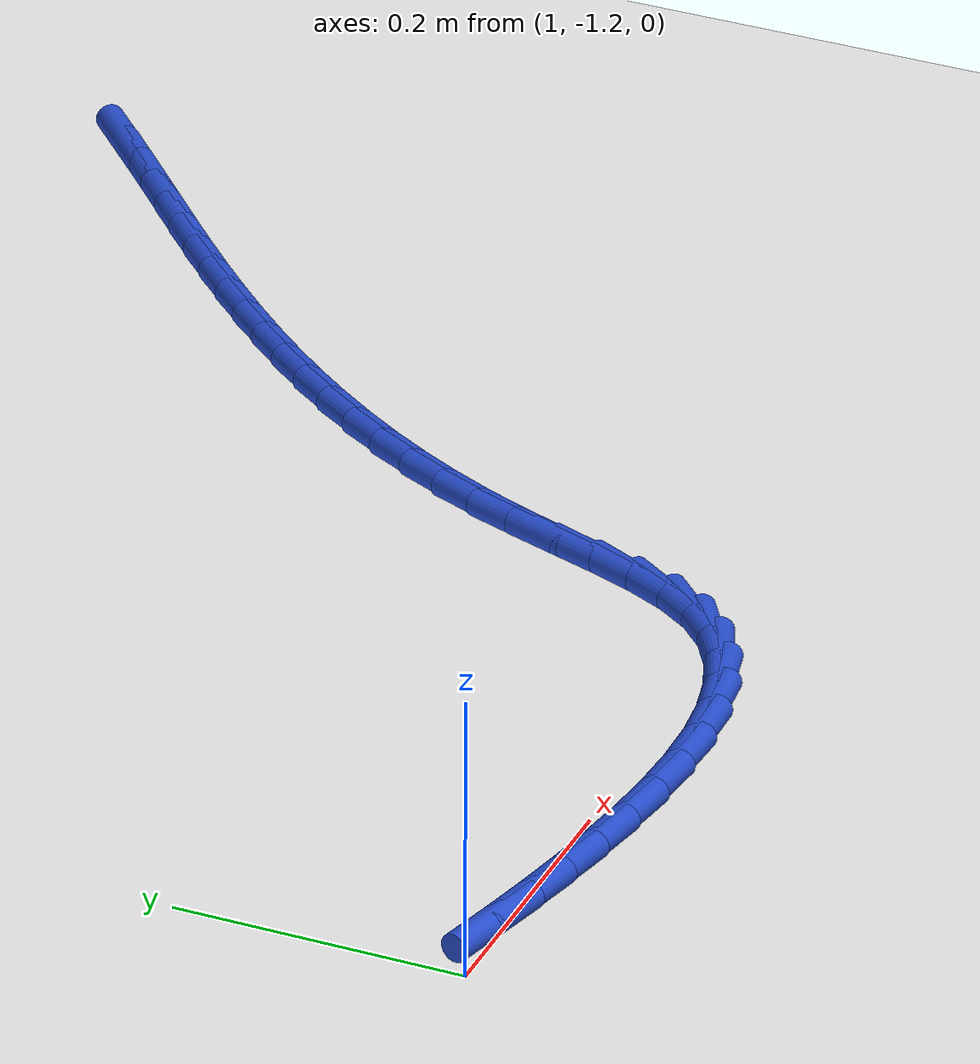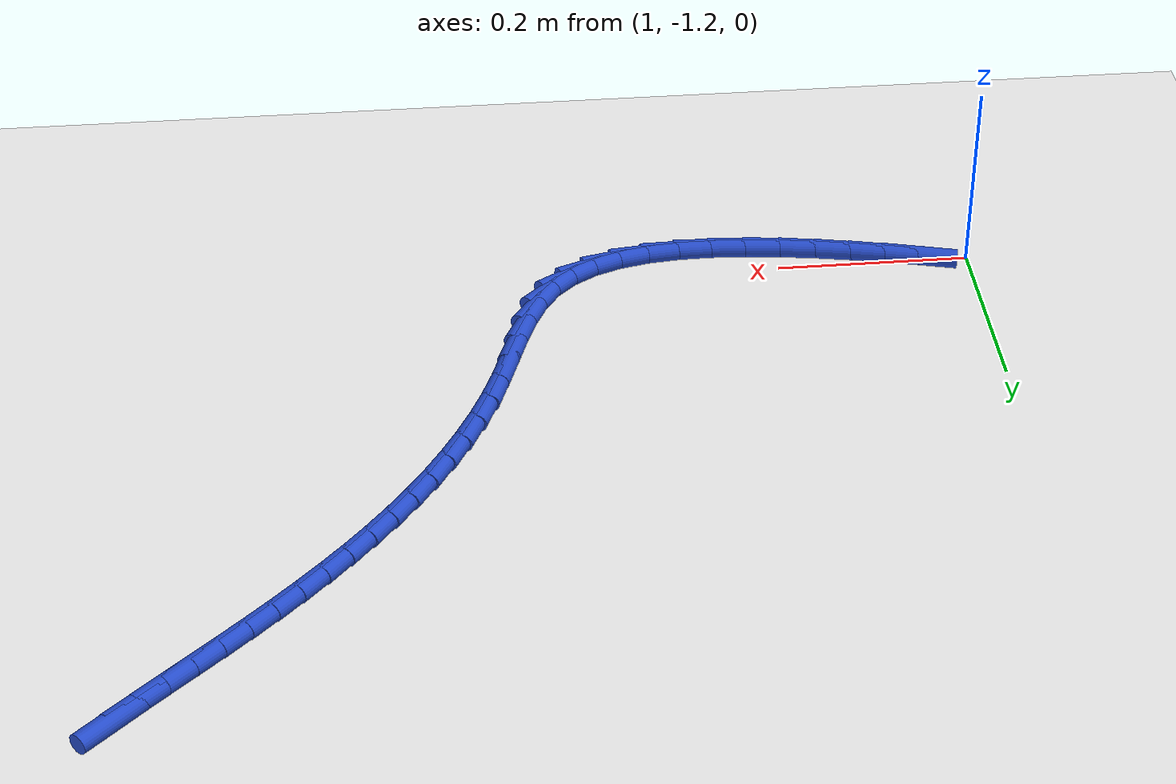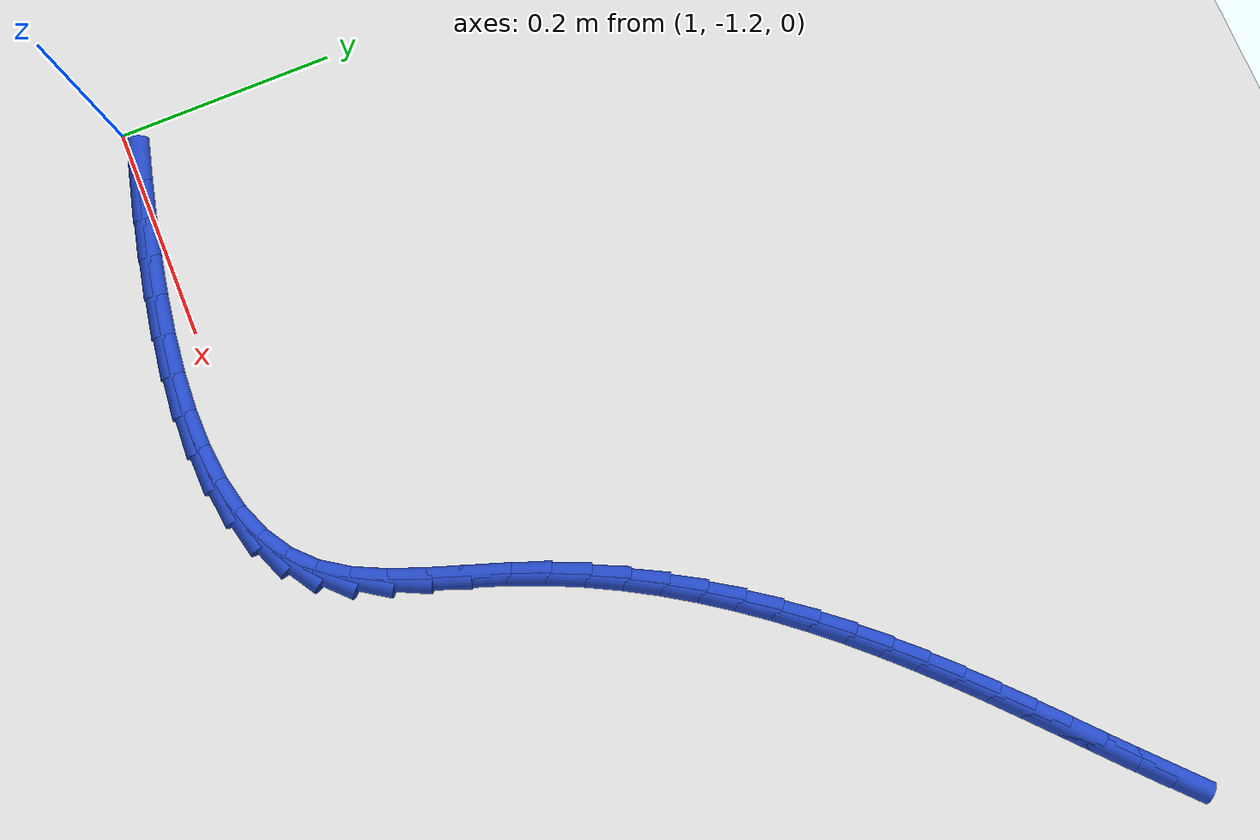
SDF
<sdf version="1.6">
 <world name="default">
  <model name="ground_plane">
   <static>1</static>
   <link name="link">
    <collision name="collision">
     <geometry><plane><normal>0 0 1</normal><size>100 100</size></plane></geometry>
     <surface><friction><ode><mu>100</mu><mu2>50</mu2></ode></friction></surface>
    </collision>
    <visual name="visual">
     <cast_shadows>0</cast_shadows>
     <geometry><plane><normal>0 0 1</normal><size>100 100</size></plane></geometry>
     <material>
      <script><uri>file://media/materials/scripts/gazebo.material</uri><name>Gazebo/WhiteGlow</name></script>
     </material>
    </visual>
   </link>
  </model>
  <model name="line">
   <link name="link_122">
    <pose>1.874182190727588 -0.5668074917249718 0.01 0 1.57 0.7535798640438116</pose>
    <collision name="collision">
     <geometry><cylinder><radius>0.01</radius><length>0.08</length></cylinder></geometry>
    </collision>
    <visual name="visual">
     <material>
      <script><name>Gazebo/Blue</name><uri>file://media/materials/scripts/gazebo.material</uri></script>
     </material>
     <geometry><cylinder><radius>0.01</radius><length>0.08</length></cylinder></geometry>
    </visual>
   </link>
   <link name="link_123">
    <pose>1.8502339488571236 -0.5892782609705726 0.01 0 1.57 0.7433039889756581</pose>
    <collision name="collision">
     <geometry><cylinder><radius>0.01</radius><length>0.08</length></cylinder></geometry>
    </collision>
    <visual name="visual">
     <material>
      <script><name>Gazebo/Blue</name><uri>file://media/materials/scripts/gazebo.material</uri></script>
     </material>
     <geometry><cylinder><radius>0.01</radius><length>0.08</length></cylinder></geometry>
    </visual>
   </link>
   <link name="link_124">
    <pose>1.8262081559147005 -0.6113619654746523 0.01 0 1.57 0.7390709265380411</pose>
    <collision name="collision">
     <geometry><cylinder><radius>0.01</radius><length>0.08</length></cylinder></geometry>
    </collision>
    <visual name="visual">
     <material>
      <script><name>Gazebo/Blue</name><uri>file://media/materials/scripts/gazebo.material</uri></script>
     </material>
     <geometry><cylinder><radius>0.01</radius><length>0.08</length></cylinder></geometry>
    </visual>
   </link>
   <link name="link_125">
    <pose>1.8022010480003792 -0.6332417388487268 0.01 0 1.57 0.7409867454874596</pose>
    <collision name="collision">
     <geometry><cylinder><radius>0.01</radius><length>0.08</length></cylinder></geometry>
    </collision>
    <visual name="visual">
     <material>
      <script><name>Gazebo/Blue</name><uri>file://media/materials/scripts/gazebo.material</uri></script>
     </material>
     <geometry><cylinder><radius>0.01</radius><length>0.08</length></cylinder></geometry>
    </visual>
   </link>
   <link name="link_126">
    <pose>1.7783088612142213 -0.6551007147043103 0.01 0 1.57 0.7490983043860503</pose>
    <collision name="collision">
     <geometry><cylinder><radius>0.01</radius><length>0.08</length></cylinder></geometry>
    </collision>
    <visual name="visual">
     <material>
      <script><name>Gazebo/Blue</name><uri>file://media/materials/scripts/gazebo.material</uri></script>
     </material>
     <geometry><cylinder><radius>0.01</radius><length>0.08</length></cylinder></geometry>
    </visual>
   </link>
   <link name="link_127">
    <pose>1.7546278316562858 -0.6771220266529182 0.01 0 1.57 0.7633588235683971</pose>
    <collision name="collision">
     <geometry><cylinder><radius>0.01</radius><length>0.08</length></cylinder></geometry>
    </collision>
    <visual name="visual">
     <material>
      <script><name>Gazebo/Blue</name><uri>file://media/materials/scripts/gazebo.material</uri></script>
     </material>
     <geometry><cylinder><radius>0.01</radius><length>0.08</length></cylinder></geometry>
    </visual>
   </link>
   <link name="link_128">
    <pose>1.7312541097155654 -0.6994875231666992 0.01 0 1.57 0.7824559437452026</pose>
    <collision name="collision">
     <geometry><cylinder><radius>0.01</radius><length>0.08</length></cylinder></geometry>
    </collision>
    <visual name="visual">
     <material>
      <script><name>Gazebo/Blue</name><uri>file://media/materials/scripts/gazebo.material</uri></script>
     </material>
     <geometry><cylinder><radius>0.01</radius><length>0.08</length></cylinder></geometry>
    </visual>
   </link>
   <link name="link_129">
    <pose>1.7082803408620766 -0.7223265004691762 0.01 0 1.57 0.8047190325034674</pose>
    <collision name="collision">
     <geometry><cylinder><radius>0.01</radius><length>0.08</length></cylinder></geometry>
    </collision>
    <visual name="visual">
     <material>
      <script><name>Gazebo/Blue</name><uri>file://media/materials/scripts/gazebo.material</uri></script>
     </material>
     <geometry><cylinder><radius>0.01</radius><length>0.08</length></cylinder></geometry>
    </visual>
   </link>
   <link name="link_130">
    <pose>1.685794514921609 -0.7456984487271364 0.01 0 1.57 0.8300464755602897</pose>
    <collision name="collision">
     <geometry><cylinder><radius>0.01</radius><length>0.08</length></cylinder></geometry>
    </collision>
    <visual name="visual">
     <material>
      <script><name>Gazebo/Blue</name><uri>file://media/materials/scripts/gazebo.material</uri></script>
     </material>
     <geometry><cylinder><radius>0.01</radius><length>0.08</length></cylinder></geometry>
    </visual>
   </link>
   <link name="link_131">
    <pose>1.6638843000327512 -0.7696580347759787 0.01 0 1.57 0.8584422606500031</pose>
    <collision name="collision">
     <geometry><cylinder><radius>0.01</radius><length>0.08</length></cylinder></geometry>
    </collision>
    <visual name="visual">
     <material>
      <script><name>Gazebo/Blue</name><uri>file://media/materials/scripts/gazebo.material</uri></script>
     </material>
     <geometry><cylinder><radius>0.01</radius><length>0.08</length></cylinder></geometry>
    </visual>
   </link>
   <link name="link_132">
    <pose>1.6426373643340937 -0.7942599254511029 0.01 0 1.57 0.8898941808894133</pose>
    <collision name="collision">
     <geometry><cylinder><radius>0.01</radius><length>0.08</length></cylinder></geometry>
    </collision>
    <visual name="visual">
     <material>
      <script><name>Gazebo/Blue</name><uri>file://media/materials/scripts/gazebo.material</uri></script>
     </material>
     <geometry><cylinder><radius>0.01</radius><length>0.08</length></cylinder></geometry>
    </visual>
   </link>
   <link name="link_133">
    <pose>1.6221413759642271 -0.8195587875879076 0.01 0 1.57 0.9243658996771016</pose>
    <collision name="collision">
     <geometry><cylinder><radius>0.01</radius><length>0.08</length></cylinder></geometry>
    </collision>
    <visual name="visual">
     <material>
      <script><name>Gazebo/Blue</name><uri>file://media/materials/scripts/gazebo.material</uri></script>
     </material>
     <geometry><cylinder><radius>0.01</radius><length>0.08</length></cylinder></geometry>
    </visual>
   </link>
   <link name="link_134">
    <pose>1.6024840030617395 -0.845609288021792 0.01 0 1.57 0.9617885758835427</pose>
    <collision name="collision">
     <geometry><cylinder><radius>0.01</radius><length>0.08</length></cylinder></geometry>
    </collision>
    <visual name="visual">
     <material>
      <script><name>Gazebo/Blue</name><uri>file://media/materials/scripts/gazebo.material</uri></script>
     </material>
     <geometry><cylinder><radius>0.01</radius><length>0.08</length></cylinder></geometry>
    </visual>
   </link>
   <link name="link_135">
    <pose>1.5837529137652218 -0.8724660935881559 0.01 0 1.57 1.0020525653082217</pose>
    <collision name="collision">
     <geometry><cylinder><radius>0.01</radius><length>0.08</length></cylinder></geometry>
    </collision>
    <visual name="visual">
     <material>
      <script><name>Gazebo/Blue</name><uri>file://media/materials/scripts/gazebo.material</uri></script>
     </material>
     <geometry><cylinder><radius>0.01</radius><length>0.08</length></cylinder></geometry>
    </visual>
   </link>
   <link name="link_136">
    <pose>1.5660357762132626 -0.9001838711223981 0.01 0 1.57 1.0449999357946032</pose>
    <collision name="collision">
     <geometry><cylinder><radius>0.01</radius><length>0.08</length></cylinder></geometry>
    </collision>
    <visual name="visual">
     <material>
      <script><name>Gazebo/Blue</name><uri>file://media/materials/scripts/gazebo.material</uri></script>
     </material>
     <geometry><cylinder><radius>0.01</radius><length>0.08</length></cylinder></geometry>
    </visual>
   </link>
   <link name="link_137">
    <pose>1.5494202585444523 -0.9288172874599181 0.01 0 1.57 1.090418725132333</pose>
    <collision name="collision">
     <geometry><cylinder><radius>0.01</radius><length>0.08</length></cylinder></geometry>
    </collision>
    <visual name="visual">
     <material>
      <script><name>Gazebo/Blue</name><uri>file://media/materials/scripts/gazebo.material</uri></script>
     </material>
     <geometry><cylinder><radius>0.01</radius><length>0.08</length></cylinder></geometry>
    </visual>
   </link>
   <link name="link_138">
    <pose>1.53399402889738 -0.9584210094361156 0.01 0 1.57 1.1380399701010162</pose>
    <collision name="collision">
     <geometry><cylinder><radius>0.01</radius><length>0.08</length></cylinder></geometry>
    </collision>
    <visual name="visual">
     <material>
      <script><name>Gazebo/Blue</name><uri>file://media/materials/scripts/gazebo.material</uri></script>
     </material>
     <geometry><cylinder><radius>0.01</radius><length>0.08</length></cylinder></geometry>
    </visual>
   </link>
   <link name="link_139">
    <pose>1.5198447554106358 -0.989049703886389 0.01 0 1.57 1.187538472412946</pose>
    <collision name="collision">
     <geometry><cylinder><radius>0.01</radius><length>0.08</length></cylinder></geometry>
    </collision>
    <visual name="visual">
     <material>
      <script><name>Gazebo/Blue</name><uri>file://media/materials/scripts/gazebo.material</uri></script>
     </material>
     <geometry><cylinder><radius>0.01</radius><length>0.08</length></cylinder></geometry>
    </visual>
   </link>
   <link name="link_140">
    <pose>1.5070601062228093 -1.020758037646138 0.01 0 1.57 1.2316523930967722</pose>
    <collision name="collision">
     <geometry><cylinder><radius>0.01</radius><length>0.08</length></cylinder></geometry>
    </collision>
    <visual name="visual">
     <material>
      <script><name>Gazebo/Blue</name><uri>file://media/materials/scripts/gazebo.material</uri></script>
     </material>
     <geometry><cylinder><radius>0.01</radius><length>0.08</length></cylinder></geometry>
    </visual>
   </link>
   <link name="link_141">
    <pose>1.4955426695643015 -1.0534062407184974 0.01 0 1.57 1.2410888413136951</pose>
    <collision name="collision">
     <geometry><cylinder><radius>0.01</radius><length>0.08</length></cylinder></geometry>
    </collision>
    <visual name="visual">
     <material>
      <script><name>Gazebo/Blue</name><uri>file://media/materials/scripts/gazebo.material</uri></script>
     </material>
     <geometry><cylinder><radius>0.01</radius><length>0.08</length></cylinder></geometry>
    </visual>
   </link>
   <link name="link_142">
    <pose>1.4843871558325057 -1.0860058220960729 0.01 0 1.57 1.207273141518912</pose>
    <collision name="collision">
     <geometry><cylinder><radius>0.01</radius><length>0.08</length></cylinder></geometry>
    </collision>
    <visual name="visual">
     <material>
      <script><name>Gazebo/Blue</name><uri>file://media/materials/scripts/gazebo.material</uri></script>
     </material>
     <geometry><cylinder><radius>0.01</radius><length>0.08</length></cylinder></geometry>
    </visual>
   </link>
   <link name="link_143">
    <pose>1.4724679031105035 -1.1173367772855762 0.01 0 1.57 1.1242815434180873</pose>
    <collision name="collision">
     <geometry><cylinder><radius>0.01</radius><length>0.08</length></cylinder></geometry>
    </collision>
    <visual name="visual">
     <material>
      <script><name>Gazebo/Blue</name><uri>file://media/materials/scripts/gazebo.material</uri></script>
     </material>
     <geometry><cylinder><radius>0.01</radius><length>0.08</length></cylinder></geometry>
    </visual>
   </link>
   <link name="link_144">
    <pose>1.45865924450058 -1.1461790965611138 0.01 0 1.57 0.9809244017219313</pose>
    <collision name="collision">
     <geometry><cylinder><radius>0.01</radius><length>0.08</length></cylinder></geometry>
    </collision>
    <visual name="visual">
     <material>
      <script><name>Gazebo/Blue</name><uri>file://media/materials/scripts/gazebo.material</uri></script>
     </material>
     <geometry><cylinder><radius>0.01</radius><length>0.08</length></cylinder></geometry>
    </visual>
   </link>
   <link name="link_145">
    <pose>1.4418355131050191 -1.1713127701967914 0.01 0 1.57 0.7737187391799435</pose>
    <collision name="collision">
     <geometry><cylinder><radius>0.01</radius><length>0.08</length></cylinder></geometry>
    </collision>
    <visual name="visual">
     <material>
      <script><name>Gazebo/Blue</name><uri>file://media/materials/scripts/gazebo.material</uri></script>
     </material>
     <geometry><cylinder><radius>0.01</radius><length>0.08</length></cylinder></geometry>
    </visual>
   </link>
   <link name="link_146">
    <pose>1.4210103752528505 -1.1916570510781856 0.01 0 1.57 0.5599977171513303</pose>
    <collision name="collision">
     <geometry><cylinder><radius>0.01</radius><length>0.08</length></cylinder></geometry>
    </collision>
    <visual name="visual">
     <material>
      <script><name>Gazebo/Blue</name><uri>file://media/materials/scripts/gazebo.material</uri></script>
     </material>
     <geometry><cylinder><radius>0.01</radius><length>0.08</length></cylinder></geometry>
    </visual>
   </link>
   <link name="link_147">
    <pose>1.3962483501929104 -1.2071815124294334 0.01 0 1.57 0.377175047278202</pose>
    <collision name="collision">
     <geometry><cylinder><radius>0.01</radius><length>0.08</length></cylinder></geometry>
    </collision>
    <visual name="visual">
     <material>
      <script><name>Gazebo/Blue</name><uri>file://media/materials/scripts/gazebo.material</uri></script>
     </material>
     <geometry><cylinder><radius>0.01</radius><length>0.08</length></cylinder></geometry>
    </visual>
   </link>
   <link name="link_148">
    <pose>1.3680933349425919 -1.2183348622904717 0.01 0 1.57 0.22922186565874436</pose>
    <collision name="collision">
     <geometry><cylinder><radius>0.01</radius><length>0.08</length></cylinder></geometry>
    </collision>
    <visual name="visual">
     <material>
      <script><name>Gazebo/Blue</name><uri>file://media/materials/scripts/gazebo.material</uri></script>
     </material>
     <geometry><cylinder><radius>0.01</radius><length>0.08</length></cylinder></geometry>
    </visual>
   </link>
   <link name="link_149">
    <pose>1.3370916732947882 -1.2255682542366912 0.01 0 1.57 0.11256614162879051</pose>
    <collision name="collision">
     <geometry><cylinder><radius>0.01</radius><length>0.08</length></cylinder></geometry>
    </collision>
    <visual name="visual">
     <material>
      <script><name>Gazebo/Blue</name><uri>file://media/materials/scripts/gazebo.material</uri></script>
     </material>
     <geometry><cylinder><radius>0.01</radius><length>0.08</length></cylinder></geometry>
    </visual>
   </link>
   <link name="link_150">
    <pose>1.3037897090423909 -1.2293328418434815 0.01 0 1.57 0.021303784771561772</pose>
    <collision name="collision">
     <geometry><cylinder><radius>0.01</radius><length>0.08</length></cylinder></geometry>
    </collision>
    <visual name="visual">
     <material>
      <script><name>Gazebo/Blue</name><uri>file://media/materials/scripts/gazebo.material</uri></script>
     </material>
     <geometry><cylinder><radius>0.01</radius><length>0.08</length></cylinder></geometry>
    </visual>
   </link>
   <link name="link_151">
    <pose>1.268733785978292 -1.230079778686232 0.01 0 1.57 -0.050133984407248866</pose>
    <collision name="collision">
     <geometry><cylinder><radius>0.01</radius><length>0.08</length></cylinder></geometry>
    </collision>
    <visual name="visual">
     <material>
      <script><name>Gazebo/Blue</name><uri>file://media/materials/scripts/gazebo.material</uri></script>
     </material>
     <geometry><cylinder><radius>0.01</radius><length>0.08</length></cylinder></geometry>
    </visual>
   </link>
   <link name="link_152">
    <pose>1.232470247895385 -1.2282602183403342 0.01 0 1.57 -0.10616465097613415</pose>
    <collision name="collision">
     <geometry><cylinder><radius>0.01</radius><length>0.08</length></cylinder></geometry>
    </collision>
    <visual name="visual">
     <material>
      <script><name>Gazebo/Blue</name><uri>file://media/materials/scripts/gazebo.material</uri></script>
     </material>
     <geometry><cylinder><radius>0.01</radius><length>0.08</length></cylinder></geometry>
    </visual>
   </link>
   <link name="link_153">
    <pose>1.195545438586562 -1.2243253143811765 0.01 0 1.57 -0.1500286467021277</pose>
    <collision name="collision">
     <geometry><cylinder><radius>0.01</radius><length>0.08</length></cylinder></geometry>
    </collision>
    <visual name="visual">
     <material>
      <script><name>Gazebo/Blue</name><uri>file://media/materials/scripts/gazebo.material</uri></script>
     </material>
     <geometry><cylinder><radius>0.01</radius><length>0.08</length></cylinder></geometry>
    </visual>
   </link>
   <link name="link_154">
    <pose>1.158505701844715 -1.2187262203841494 0.01 0 1.57 -0.18397725541355034</pose>
    <collision name="collision">
     <geometry><cylinder><radius>0.01</radius><length>0.08</length></cylinder></geometry>
    </collision>
    <visual name="visual">
     <material>
      <script><name>Gazebo/Blue</name><uri>file://media/materials/scripts/gazebo.material</uri></script>
     </material>
     <geometry><cylinder><radius>0.01</radius><length>0.08</length></cylinder></geometry>
    </visual>
   </link>
   <link name="link_155">
    <pose>1.1218973814627362 -1.211914089924643 0.01 0 1.57 -0.2095138428759299</pose>
    <collision name="collision">
     <geometry><cylinder><radius>0.01</radius><length>0.08</length></cylinder></geometry>
    </collision>
    <visual name="visual">
     <material>
      <script><name>Gazebo/Blue</name><uri>file://media/materials/scripts/gazebo.material</uri></script>
     </material>
     <geometry><cylinder><radius>0.01</radius><length>0.08</length></cylinder></geometry>
    </visual>
   </link>
   <link name="link_156">
    <pose>1.0862611188688707 -1.2043365998160507 0.01 0 1.57 -0.23021338335514113</pose>
    <collision name="collision">
     <geometry><cylinder><radius>0.01</radius><length>0.08</length></cylinder></geometry>
    </collision>
    <visual name="visual">
     <material>
      <script><name>Gazebo/Blue</name><uri>file://media/materials/scripts/gazebo.material</uri></script>
     </material>
     <geometry><cylinder><radius>0.01</radius><length>0.08</length></cylinder></geometry>
    </visual>
   </link>
   <link name="link_157">
    <pose>1.0518649633042743 -1.1962752259682479 0.01 0 1.57 -0.2500887541490302</pose>
    <collision name="collision">
     <geometry><cylinder><radius>0.01</radius><length>0.08</length></cylinder></geometry>
    </collision>
    <visual name="visual">
     <material>
      <script><name>Gazebo/Blue</name><uri>file://media/materials/scripts/gazebo.material</uri></script>
     </material>
     <geometry><cylinder><radius>0.01</radius><length>0.08</length></cylinder></geometry>
    </visual>
   </link>
  </model>
 </world>
</sdf>
